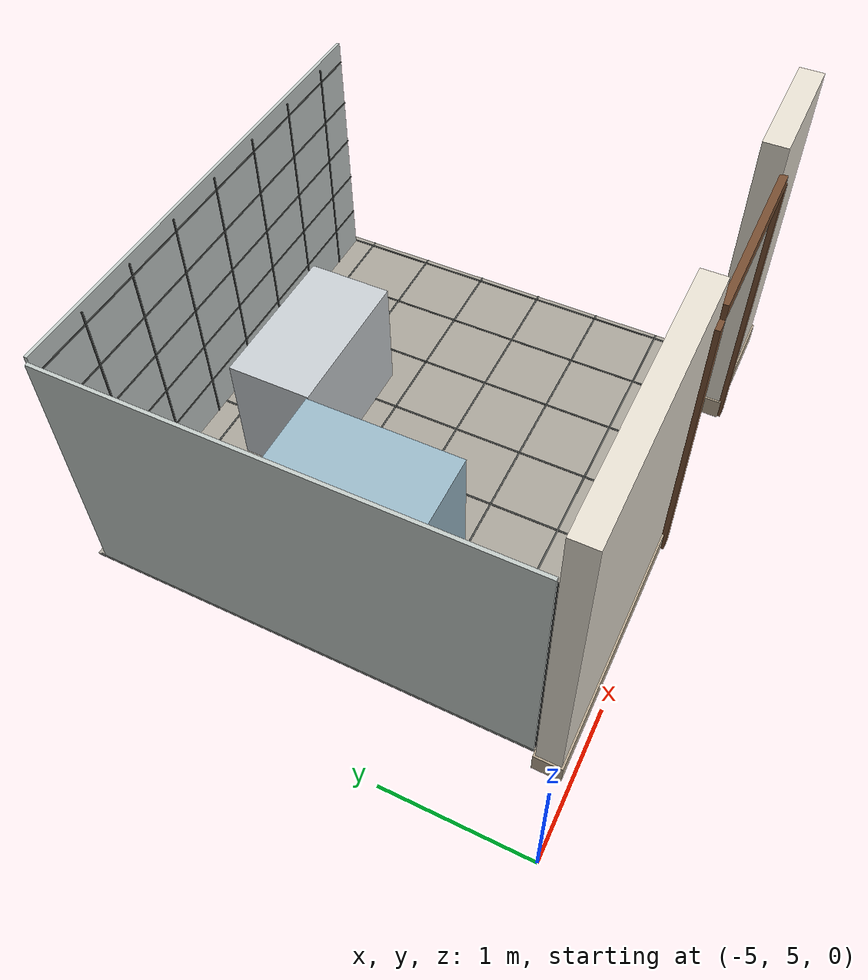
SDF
<sdf version="1.9">
 <world name="tangying_home">
  <model name="wall_bed_bath">
   <pose>-3.575 5.15 1.2 0 -0 0</pose>
   <static>true</static>
   <link name="body">
    <inertial>
     <pose>0 0 -0.0427161347433 0 -0 0</pose>
     <mass>1498.5026240000002</mass>
     <inertia>
      <ixx>765.4236744143673</ixx>
      <iyy>1190.9187768062086</iyy>
      <izz>432.14661492235854</izz>
      <ixy>0.0</ixy>
      <ixz>0.0</ixz>
      <iyz>0.0</iyz>
     </inertia>
    </inertial>
    <collision name="geom-76">
     <geometry><box><size>1.85 0.16 2.4</size></box></geometry>
     <surface><friction><ode><mu>1.0</mu><mu2>1.0</mu2></ode></friction></surface>
    </collision>
    <visual name="geom-76">
     <geometry><box><size>1.85 0.16 2.4</size></box></geometry>
     <material>
      <ambient>0.879999995232 0.819999992847 0.740000009537 1</ambient>
      <diffuse>0.879999995232 0.819999992847 0.740000009537 1</diffuse>
     </material>
    </visual>
    <visual name="geom-77">
     <geometry><box><size>1.854 0.164 2.404</size></box></geometry>
     <material>
      <ambient>0.899999976158 0.870000004768 0.819999992847 1</ambient>
      <diffuse>0.899999976158 0.870000004768 0.819999992847 1</diffuse>
     </material>
    </visual>
    <visual name="geom-78">
     <pose>0 0 -1.12 0 -0 0</pose>
     <geometry><box><size>1.88 0.19 0.16</size></box></geometry>
     <material>
      <ambient>0.72000002861 0.660000026226 0.569999992847 1</ambient>
      <diffuse>0.72000002861 0.660000026226 0.569999992847 1</diffuse>
     </material>
    </visual>
   </link>
  </model>
  <model name="wall_bed_bath_east">
   <pose>-1.025 5.15 1.2 0 -0 0</pose>
   <static>true</static>
   <link name="body">
    <inertial>
     <pose>0 0 -0.0434331907378 0 -0 0</pose>
     <mass>689.846624</mass>
     <inertia>
      <ixx>352.66944771030734</ixx>
      <iyy>392.9794643261474</iyy>
      <izz>43.37290425035744</izz>
      <ixy>0.0</ixy>
      <ixz>0.0</ixz>
      <iyz>0.0</iyz>
     </inertia>
    </inertial>
    <collision name="geom-79">
     <geometry><box><size>0.85 0.16 2.4</size></box></geometry>
     <surface><friction><ode><mu>1.0</mu><mu2>1.0</mu2></ode></friction></surface>
    </collision>
    <visual name="geom-79">
     <geometry><box><size>0.85 0.16 2.4</size></box></geometry>
     <material>
      <ambient>0.879999995232 0.819999992847 0.740000009537 1</ambient>
      <diffuse>0.879999995232 0.819999992847 0.740000009537 1</diffuse>
     </material>
    </visual>
    <visual name="geom-80">
     <geometry><box><size>0.854 0.164 2.404</size></box></geometry>
     <material>
      <ambient>0.899999976158 0.870000004768 0.819999992847 1</ambient>
      <diffuse>0.899999976158 0.870000004768 0.819999992847 1</diffuse>
     </material>
    </visual>
    <visual name="geom-81">
     <pose>0 0 -1.12 0 -0 0</pose>
     <geometry><box><size>0.88 0.19 0.16</size></box></geometry>
     <material>
      <ambient>0.72000002861 0.660000026226 0.569999992847 1</ambient>
      <diffuse>0.72000002861 0.660000026226 0.569999992847 1</diffuse>
     </material>
    </visual>
   </link>
  </model>
  <model name="bathroom">
   <pose>-2.6 6.85 0.006 0 -0 0</pose>
   <static>true</static>
   <link name="body">
    <inertial>
     <mass>67.5</mass>
     <inertia>
      <ixx>41.0068125</ixx>
      <iyy>35.1568125</iyy>
      <izz>76.16250000000001</izz>
      <ixy>0.0</ixy>
      <ixz>0.0</ixz>
      <iyz>0.0</iyz>
     </inertia>
    </inertial>
    <visual name="geom-86">
     <geometry><box><size>2.5 2.7 0.01</size></box></geometry>
     <material><ambient>0 0 0 0</ambient><diffuse>0 0 0 0</diffuse></material>
    </visual>
   </link>
  </model>
  <model name="bathroom_tiles">
   <pose>-2.65 6.825 0.012 0 -0 0</pose>
   <static>true</static>
   <link name="body">
    <inertial>
     <mass>135.93600000000004</mass>
     <inertia>
      <ixx>116.00035123200006</ixx>
      <iyy>141.95959603200006</iyy>
      <izz>257.9566848000001</izz>
      <ixy>0.0</ixy>
      <ixz>0.0</ixz>
      <iyz>0.0</iyz>
     </inertia>
    </inertial>
    <visual name="geom-91">
     <geometry><box><size>3.54 3.2 0.012</size></box></geometry>
     <material>
      <ambient>0.660000026226 0.639999985695 0.600000023842 1</ambient>
      <diffuse>0.660000026226 0.639999985695 0.600000023842 1</diffuse>
      <pbr>
       <metal>
        <albedo_map>/assets/xlerobot-home/textures/texture-7.png</albedo_map>
        <roughness>0.85</roughness>
        <metalness>0</metalness>
       </metal>
      </pbr>
     </material>
    </visual>
   </link>
  </model>
  <model name="bathroom_sink">
   <pose>-2.7 7.7 0.45 0 -0 0</pose>
   <static>true</static>
   <link name="body">
    <inertial>
     <mass>594.0000000000001</mass>
     <inertia>
      <ixx>57.91500000000001</ixx>
      <iyy>99.99000000000005</iyy>
      <izz>77.71500000000003</izz>
      <ixy>0.0</ixy>
      <ixz>0.0</ixz>
      <iyz>0.0</iyz>
     </inertia>
    </inertial>
    <collision name="geom-102">
     <geometry><box><size>1.1 0.6 0.9</size></box></geometry>
     <surface><friction><ode><mu>1.0</mu><mu2>1.0</mu2></ode></friction></surface>
    </collision>
    <visual name="geom-102">
     <geometry><box><size>1.1 0.6 0.9</size></box></geometry>
     <material>
      <ambient>0.77999997139 0.800000011921 0.819999992847 1</ambient>
      <diffuse>0.77999997139 0.800000011921 0.819999992847 1</diffuse>
     </material>
    </visual>
   </link>
  </model>
  <model name="bathroom_shower">
   <pose>-3.75 6.75 0.55 0 -0 0</pose>
   <static>true</static>
   <link name="body">
    <inertial>
     <mass>847.0000000000001</mass>
     <inertia>
      <ixx>170.81166666666672</ixx>
      <iyy>119.99166666666669</iyy>
      <izz>119.99166666666669</izz>
      <ixy>0.0</ixy>
      <ixz>0.0</ixz>
      <iyz>0.0</iyz>
     </inertia>
    </inertial>
    <collision name="geom-103">
     <geometry><box><size>0.7 1.1 1.1</size></box></geometry>
     <surface><friction><ode><mu>1.0</mu><mu2>1.0</mu2></ode></friction></surface>
    </collision>
    <visual name="geom-103">
     <geometry><box><size>0.7 1.1 1.1</size></box></geometry>
     <material>
      <ambient>0.600000023842 0.72000002861 0.77999997139 1</ambient>
      <diffuse>0.600000023842 0.72000002861 0.77999997139 1</diffuse>
     </material>
    </visual>
   </link>
  </model>
  <model name="bathroom_wall_tile_north">
   <pose>-2.65 8.405 0.95 0 -0 0</pose>
   <static>true</static>
   <link name="body">
    <inertial>
     <mass>156.86399999999998</mass>
     <inertia>
      <ixx>47.19744947199999</ixx>
      <iyy>201.87873919999993</iyy>
      <izz>154.69634867199997</izz>
      <ixy>0.0</ixy>
      <ixz>0.0</ixz>
      <iyz>0.0</iyz>
     </inertia>
    </inertial>
    <visual name="geom-147">
     <geometry><box><size>3.44 0.024 1.9</size></box></geometry>
     <material>
      <ambient>0.759999990463 0.790000021458 0.77999997139 1</ambient>
      <diffuse>0.759999990463 0.790000021458 0.77999997139 1</diffuse>
     </material>
    </visual>
   </link>
  </model>
  <model name="bathroom_wall_tile_west">
   <pose>-4.405 6.82 0.95 0 -0 0</pose>
   <static>true</static>
   <link name="body">
    <inertial>
     <mass>141.36</mass>
     <inertia>
      <ixx>155.73160000000001</ixx>
      <iyy>42.532585280000006</iyy>
      <izz>113.21258528000003</izz>
      <ixy>0.0</ixy>
      <ixz>0.0</ixz>
      <iyz>0.0</iyz>
     </inertia>
    </inertial>
    <visual name="geom-148">
     <geometry><box><size>0.024 3.1 1.9</size></box></geometry>
     <material>
      <ambient>0.759999990463 0.790000021458 0.77999997139 1</ambient>
      <diffuse>0.759999990463 0.790000021458 0.77999997139 1</diffuse>
     </material>
    </visual>
   </link>
  </model>
  <model name="bathroom_floor_grout_x_0">
   <pose>-4.42 6.815 0.02 0 -0 0</pose>
   <static>true</static>
   <link name="body">
    <inertial>
     <mass>0.15216</mass>
     <inertia>
      <ixx>0.12742025488</ixx>
      <iyy>2.0288e-06</iyy>
      <izz>0.12742187792</izz>
      <ixy>0.0</ixy>
      <ixz>0.0</ixz>
      <iyz>0.0</iyz>
     </inertia>
    </inertial>
    <visual name="geom-172">
     <geometry><box><size>0.012 3.17 0.004</size></box></geometry>
     <material>
      <ambient>0.300000011921 0.310000002384 0.300000011921 1</ambient>
      <diffuse>0.300000011921 0.310000002384 0.300000011921 1</diffuse>
     </material>
    </visual>
   </link>
  </model>
  <model name="bathroom_floor_grout_x_1">
   <pose>-3.92 6.815 0.02 0 -0 0</pose>
   <static>true</static>
   <link name="body">
    <inertial>
     <mass>0.15216</mass>
     <inertia>
      <ixx>0.12742025488</ixx>
      <iyy>2.0288e-06</iyy>
      <izz>0.12742187792</izz>
      <ixy>0.0</ixy>
      <ixz>0.0</ixz>
      <iyz>0.0</iyz>
     </inertia>
    </inertial>
    <visual name="geom-173">
     <geometry><box><size>0.012 3.17 0.004</size></box></geometry>
     <material>
      <ambient>0.300000011921 0.310000002384 0.300000011921 1</ambient>
      <diffuse>0.300000011921 0.310000002384 0.300000011921 1</diffuse>
     </material>
    </visual>
   </link>
  </model>
  <model name="bathroom_floor_grout_x_2">
   <pose>-3.42 6.815 0.02 0 -0 0</pose>
   <static>true</static>
   <link name="body">
    <inertial>
     <mass>0.15216</mass>
     <inertia>
      <ixx>0.12742025488</ixx>
      <iyy>2.0288e-06</iyy>
      <izz>0.12742187792</izz>
      <ixy>0.0</ixy>
      <ixz>0.0</ixz>
      <iyz>0.0</iyz>
     </inertia>
    </inertial>
    <visual name="geom-174">
     <geometry><box><size>0.012 3.17 0.004</size></box></geometry>
     <material>
      <ambient>0.300000011921 0.310000002384 0.300000011921 1</ambient>
      <diffuse>0.300000011921 0.310000002384 0.300000011921 1</diffuse>
     </material>
    </visual>
   </link>
  </model>
  <model name="bathroom_floor_grout_x_3">
   <pose>-2.92 6.815 0.02 0 -0 0</pose>
   <static>true</static>
   <link name="body">
    <inertial>
     <mass>0.15216</mass>
     <inertia>
      <ixx>0.12742025488</ixx>
      <iyy>2.0288e-06</iyy>
      <izz>0.12742187792</izz>
      <ixy>0.0</ixy>
      <ixz>0.0</ixz>
      <iyz>0.0</iyz>
     </inertia>
    </inertial>
    <visual name="geom-175">
     <geometry><box><size>0.012 3.17 0.004</size></box></geometry>
     <material>
      <ambient>0.300000011921 0.310000002384 0.300000011921 1</ambient>
      <diffuse>0.300000011921 0.310000002384 0.300000011921 1</diffuse>
     </material>
    </visual>
   </link>
  </model>
  <model name="bathroom_floor_grout_x_4">
   <pose>-2.42 6.815 0.02 0 -0 0</pose>
   <static>true</static>
   <link name="body">
    <inertial>
     <mass>0.15216</mass>
     <inertia>
      <ixx>0.12742025488</ixx>
      <iyy>2.0288e-06</iyy>
      <izz>0.12742187792</izz>
      <ixy>0.0</ixy>
      <ixz>0.0</ixz>
      <iyz>0.0</iyz>
     </inertia>
    </inertial>
    <visual name="geom-176">
     <geometry><box><size>0.012 3.17 0.004</size></box></geometry>
     <material>
      <ambient>0.300000011921 0.310000002384 0.300000011921 1</ambient>
      <diffuse>0.300000011921 0.310000002384 0.300000011921 1</diffuse>
     </material>
    </visual>
   </link>
  </model>
  <model name="bathroom_floor_grout_x_5">
   <pose>-1.92 6.815 0.02 0 -0 0</pose>
   <static>true</static>
   <link name="body">
    <inertial>
     <mass>0.15216</mass>
     <inertia>
      <ixx>0.12742025488</ixx>
      <iyy>2.0288e-06</iyy>
      <izz>0.12742187792</izz>
      <ixy>0.0</ixy>
      <ixz>0.0</ixz>
      <iyz>0.0</iyz>
     </inertia>
    </inertial>
    <visual name="geom-177">
     <geometry><box><size>0.012 3.17 0.004</size></box></geometry>
     <material>
      <ambient>0.300000011921 0.310000002384 0.300000011921 1</ambient>
      <diffuse>0.300000011921 0.310000002384 0.300000011921 1</diffuse>
     </material>
    </visual>
   </link>
  </model>
  <model name="bathroom_floor_grout_x_6">
   <pose>-1.42 6.815 0.02 0 -0 0</pose>
   <static>true</static>
   <link name="body">
    <inertial>
     <mass>0.15216</mass>
     <inertia>
      <ixx>0.12742025488</ixx>
      <iyy>2.0288e-06</iyy>
      <izz>0.12742187792</izz>
      <ixy>0.0</ixy>
      <ixz>0.0</ixz>
      <iyz>0.0</iyz>
     </inertia>
    </inertial>
    <visual name="geom-178">
     <geometry><box><size>0.012 3.17 0.004</size></box></geometry>
     <material>
      <ambient>0.300000011921 0.310000002384 0.300000011921 1</ambient>
      <diffuse>0.300000011921 0.310000002384 0.300000011921 1</diffuse>
     </material>
    </visual>
   </link>
  </model>
  <model name="bathroom_floor_grout_x_7">
   <pose>-0.92 6.815 0.02 0 -0 0</pose>
   <static>true</static>
   <link name="body">
    <inertial>
     <mass>0.15216</mass>
     <inertia>
      <ixx>0.12742025488</ixx>
      <iyy>2.0288e-06</iyy>
      <izz>0.12742187792</izz>
      <ixy>0.0</ixy>
      <ixz>0.0</ixz>
      <iyz>0.0</iyz>
     </inertia>
    </inertial>
    <visual name="geom-179">
     <geometry><box><size>0.012 3.17 0.004</size></box></geometry>
     <material>
      <ambient>0.300000011921 0.310000002384 0.300000011921 1</ambient>
      <diffuse>0.300000011921 0.310000002384 0.300000011921 1</diffuse>
     </material>
    </visual>
   </link>
  </model>
  <model name="bathroom_floor_grout_y_0">
   <pose>-2.65 5.23 0.02 0 -0 0</pose>
   <static>true</static>
   <link name="body">
    <inertial>
     <mass>0.16992000000000002</mass>
     <inertia>
      <ixx>2.2656000000000004e-06</ixx>
      <iyy>0.17744768256000001</iyy>
      <izz>0.17744949504000004</izz>
      <ixy>0.0</ixy>
      <ixz>0.0</ixz>
      <iyz>0.0</iyz>
     </inertia>
    </inertial>
    <visual name="geom-180">
     <geometry><box><size>3.54 0.012 0.004</size></box></geometry>
     <material>
      <ambient>0.300000011921 0.310000002384 0.300000011921 1</ambient>
      <diffuse>0.300000011921 0.310000002384 0.300000011921 1</diffuse>
     </material>
    </visual>
   </link>
  </model>
  <model name="bathroom_floor_grout_y_1">
   <pose>-2.65 5.73 0.02 0 -0 0</pose>
   <static>true</static>
   <link name="body">
    <inertial>
     <mass>0.16992000000000002</mass>
     <inertia>
      <ixx>2.2656000000000004e-06</ixx>
      <iyy>0.17744768256000001</iyy>
      <izz>0.17744949504000004</izz>
      <ixy>0.0</ixy>
      <ixz>0.0</ixz>
      <iyz>0.0</iyz>
     </inertia>
    </inertial>
    <visual name="geom-181">
     <geometry><box><size>3.54 0.012 0.004</size></box></geometry>
     <material>
      <ambient>0.300000011921 0.310000002384 0.300000011921 1</ambient>
      <diffuse>0.300000011921 0.310000002384 0.300000011921 1</diffuse>
     </material>
    </visual>
   </link>
  </model>
  <model name="bathroom_floor_grout_y_2">
   <pose>-2.65 6.23 0.02 0 -0 0</pose>
   <static>true</static>
   <link name="body">
    <inertial>
     <mass>0.16992000000000002</mass>
     <inertia>
      <ixx>2.2656000000000004e-06</ixx>
      <iyy>0.17744768256000001</iyy>
      <izz>0.17744949504000004</izz>
      <ixy>0.0</ixy>
      <ixz>0.0</ixz>
      <iyz>0.0</iyz>
     </inertia>
    </inertial>
    <visual name="geom-182">
     <geometry><box><size>3.54 0.012 0.004</size></box></geometry>
     <material>
      <ambient>0.300000011921 0.310000002384 0.300000011921 1</ambient>
      <diffuse>0.300000011921 0.310000002384 0.300000011921 1</diffuse>
     </material>
    </visual>
   </link>
  </model>
  <model name="bathroom_floor_grout_y_3">
   <pose>-2.65 6.73 0.02 0 -0 0</pose>
   <static>true</static>
   <link name="body">
    <inertial>
     <mass>0.16992000000000002</mass>
     <inertia>
      <ixx>2.2656000000000004e-06</ixx>
      <iyy>0.17744768256000001</iyy>
      <izz>0.17744949504000004</izz>
      <ixy>0.0</ixy>
      <ixz>0.0</ixz>
      <iyz>0.0</iyz>
     </inertia>
    </inertial>
    <visual name="geom-183">
     <geometry><box><size>3.54 0.012 0.004</size></box></geometry>
     <material>
      <ambient>0.300000011921 0.310000002384 0.300000011921 1</ambient>
      <diffuse>0.300000011921 0.310000002384 0.300000011921 1</diffuse>
     </material>
    </visual>
   </link>
  </model>
  <model name="bathroom_floor_grout_y_4">
   <pose>-2.65 7.23 0.02 0 -0 0</pose>
   <static>true</static>
   <link name="body">
    <inertial>
     <mass>0.16992000000000002</mass>
     <inertia>
      <ixx>2.2656000000000004e-06</ixx>
      <iyy>0.17744768256000001</iyy>
      <izz>0.17744949504000004</izz>
      <ixy>0.0</ixy>
      <ixz>0.0</ixz>
      <iyz>0.0</iyz>
     </inertia>
    </inertial>
    <visual name="geom-184">
     <geometry><box><size>3.54 0.012 0.004</size></box></geometry>
     <material>
      <ambient>0.300000011921 0.310000002384 0.300000011921 1</ambient>
      <diffuse>0.300000011921 0.310000002384 0.300000011921 1</diffuse>
     </material>
    </visual>
   </link>
  </model>
  <model name="bathroom_floor_grout_y_5">
   <pose>-2.65 7.73 0.02 0 -0 0</pose>
   <static>true</static>
   <link name="body">
    <inertial>
     <mass>0.16992000000000002</mass>
     <inertia>
      <ixx>2.2656000000000004e-06</ixx>
      <iyy>0.17744768256000001</iyy>
      <izz>0.17744949504000004</izz>
      <ixy>0.0</ixy>
      <ixz>0.0</ixz>
      <iyz>0.0</iyz>
     </inertia>
    </inertial>
    <visual name="geom-185">
     <geometry><box><size>3.54 0.012 0.004</size></box></geometry>
     <material>
      <ambient>0.300000011921 0.310000002384 0.300000011921 1</ambient>
      <diffuse>0.300000011921 0.310000002384 0.300000011921 1</diffuse>
     </material>
    </visual>
   </link>
  </model>
  <model name="bathroom_floor_grout_y_6">
   <pose>-2.65 8.23 0.02 0 -0 0</pose>
   <static>true</static>
   <link name="body">
    <inertial>
     <mass>0.16992000000000002</mass>
     <inertia>
      <ixx>2.2656000000000004e-06</ixx>
      <iyy>0.17744768256000001</iyy>
      <izz>0.17744949504000004</izz>
      <ixy>0.0</ixy>
      <ixz>0.0</ixz>
      <iyz>0.0</iyz>
     </inertia>
    </inertial>
    <visual name="geom-186">
     <geometry><box><size>3.54 0.012 0.004</size></box></geometry>
     <material>
      <ambient>0.300000011921 0.310000002384 0.300000011921 1</ambient>
      <diffuse>0.300000011921 0.310000002384 0.300000011921 1</diffuse>
     </material>
    </visual>
   </link>
  </model>
  <model name="bathroom_north_grout_v_0">
   <pose>-4.37 8.391 0.925 0 -0 0</pose>
   <static>true</static>
   <link name="body">
    <inertial>
     <mass>0.1776</mass>
     <inertia>
      <ixx>0.050653947200000014</ixx>
      <iyy>0.05065513120000001</iyy>
      <izz>3.0784000000000005e-06</izz>
      <ixy>0.0</ixy>
      <ixz>0.0</ixz>
      <iyz>0.0</iyz>
     </inertia>
    </inertial>
    <visual name="geom-216">
     <geometry><box><size>0.012 0.008 1.85</size></box></geometry>
     <material>
      <ambient>0.300000011921 0.310000002384 0.300000011921 1</ambient>
      <diffuse>0.300000011921 0.310000002384 0.300000011921 1</diffuse>
     </material>
    </visual>
   </link>
  </model>
  <model name="bathroom_north_grout_v_1">
   <pose>-3.92 8.391 0.925 0 -0 0</pose>
   <static>true</static>
   <link name="body">
    <inertial>
     <mass>0.1776</mass>
     <inertia>
      <ixx>0.050653947200000014</ixx>
      <iyy>0.05065513120000001</iyy>
      <izz>3.0784000000000005e-06</izz>
      <ixy>0.0</ixy>
      <ixz>0.0</ixz>
      <iyz>0.0</iyz>
     </inertia>
    </inertial>
    <visual name="geom-217">
     <geometry><box><size>0.012 0.008 1.85</size></box></geometry>
     <material>
      <ambient>0.300000011921 0.310000002384 0.300000011921 1</ambient>
      <diffuse>0.300000011921 0.310000002384 0.300000011921 1</diffuse>
     </material>
    </visual>
   </link>
  </model>
  <model name="bathroom_north_grout_v_2">
   <pose>-3.47 8.391 0.925 0 -0 0</pose>
   <static>true</static>
   <link name="body">
    <inertial>
     <mass>0.1776</mass>
     <inertia>
      <ixx>0.050653947200000014</ixx>
      <iyy>0.05065513120000001</iyy>
      <izz>3.0784000000000005e-06</izz>
      <ixy>0.0</ixy>
      <ixz>0.0</ixz>
      <iyz>0.0</iyz>
     </inertia>
    </inertial>
    <visual name="geom-218">
     <geometry><box><size>0.012 0.008 1.85</size></box></geometry>
     <material>
      <ambient>0.300000011921 0.310000002384 0.300000011921 1</ambient>
      <diffuse>0.300000011921 0.310000002384 0.300000011921 1</diffuse>
     </material>
    </visual>
   </link>
  </model>
  <model name="bathroom_north_grout_v_3">
   <pose>-3.02 8.391 0.925 0 -0 0</pose>
   <static>true</static>
   <link name="body">
    <inertial>
     <mass>0.1776</mass>
     <inertia>
      <ixx>0.050653947200000014</ixx>
      <iyy>0.05065513120000001</iyy>
      <izz>3.0784000000000005e-06</izz>
      <ixy>0.0</ixy>
      <ixz>0.0</ixz>
      <iyz>0.0</iyz>
     </inertia>
    </inertial>
    <visual name="geom-219">
     <geometry><box><size>0.012 0.008 1.85</size></box></geometry>
     <material>
      <ambient>0.300000011921 0.310000002384 0.300000011921 1</ambient>
      <diffuse>0.300000011921 0.310000002384 0.300000011921 1</diffuse>
     </material>
    </visual>
   </link>
  </model>
  <model name="bathroom_north_grout_v_4">
   <pose>-2.57 8.391 0.925 0 -0 0</pose>
   <static>true</static>
   <link name="body">
    <inertial>
     <mass>0.1776</mass>
     <inertia>
      <ixx>0.050653947200000014</ixx>
      <iyy>0.05065513120000001</iyy>
      <izz>3.0784000000000005e-06</izz>
      <ixy>0.0</ixy>
      <ixz>0.0</ixz>
      <iyz>0.0</iyz>
     </inertia>
    </inertial>
    <visual name="geom-220">
     <geometry><box><size>0.012 0.008 1.85</size></box></geometry>
     <material>
      <ambient>0.300000011921 0.310000002384 0.300000011921 1</ambient>
      <diffuse>0.300000011921 0.310000002384 0.300000011921 1</diffuse>
     </material>
    </visual>
   </link>
  </model>
  <model name="bathroom_north_grout_v_5">
   <pose>-2.12 8.391 0.925 0 -0 0</pose>
   <static>true</static>
   <link name="body">
    <inertial>
     <mass>0.1776</mass>
     <inertia>
      <ixx>0.050653947200000014</ixx>
      <iyy>0.05065513120000001</iyy>
      <izz>3.0784000000000005e-06</izz>
      <ixy>0.0</ixy>
      <ixz>0.0</ixz>
      <iyz>0.0</iyz>
     </inertia>
    </inertial>
    <visual name="geom-221">
     <geometry><box><size>0.012 0.008 1.85</size></box></geometry>
     <material>
      <ambient>0.300000011921 0.310000002384 0.300000011921 1</ambient>
      <diffuse>0.300000011921 0.310000002384 0.300000011921 1</diffuse>
     </material>
    </visual>
   </link>
  </model>
  <model name="bathroom_north_grout_v_6">
   <pose>-1.67 8.391 0.925 0 -0 0</pose>
   <static>true</static>
   <link name="body">
    <inertial>
     <mass>0.1776</mass>
     <inertia>
      <ixx>0.050653947200000014</ixx>
      <iyy>0.05065513120000001</iyy>
      <izz>3.0784000000000005e-06</izz>
      <ixy>0.0</ixy>
      <ixz>0.0</ixz>
      <iyz>0.0</iyz>
     </inertia>
    </inertial>
    <visual name="geom-222">
     <geometry><box><size>0.012 0.008 1.85</size></box></geometry>
     <material>
      <ambient>0.300000011921 0.310000002384 0.300000011921 1</ambient>
      <diffuse>0.300000011921 0.310000002384 0.300000011921 1</diffuse>
     </material>
    </visual>
   </link>
  </model>
  <model name="bathroom_north_grout_v_7">
   <pose>-1.22 8.391 0.925 0 -0 0</pose>
   <static>true</static>
   <link name="body">
    <inertial>
     <mass>0.1776</mass>
     <inertia>
      <ixx>0.050653947200000014</ixx>
      <iyy>0.05065513120000001</iyy>
      <izz>3.0784000000000005e-06</izz>
      <ixy>0.0</ixy>
      <ixz>0.0</ixz>
      <iyz>0.0</iyz>
     </inertia>
    </inertial>
    <visual name="geom-223">
     <geometry><box><size>0.012 0.008 1.85</size></box></geometry>
     <material>
      <ambient>0.300000011921 0.310000002384 0.300000011921 1</ambient>
      <diffuse>0.300000011921 0.310000002384 0.300000011921 1</diffuse>
     </material>
    </visual>
   </link>
  </model>
  <model name="bathroom_north_grout_h_0">
   <pose>-2.65 8.391 0.35 0 -0 0</pose>
   <static>true</static>
   <link name="body">
    <inertial>
     <mass>0.33024</mass>
     <inertia>
      <ixx>5.72416e-06</ixx>
      <iyy>0.32566463487999997</iyy>
      <izz>0.32566243327999994</izz>
      <ixy>0.0</ixy>
      <ixz>0.0</ixz>
      <iyz>0.0</iyz>
     </inertia>
    </inertial>
    <visual name="geom-224">
     <geometry><box><size>3.44 0.008 0.012</size></box></geometry>
     <material>
      <ambient>0.300000011921 0.310000002384 0.300000011921 1</ambient>
      <diffuse>0.300000011921 0.310000002384 0.300000011921 1</diffuse>
     </material>
    </visual>
   </link>
  </model>
  <model name="bathroom_north_grout_h_1">
   <pose>-2.65 8.391 0.7 0 -0 0</pose>
   <static>true</static>
   <link name="body">
    <inertial>
     <mass>0.33024</mass>
     <inertia>
      <ixx>5.72416e-06</ixx>
      <iyy>0.32566463487999997</iyy>
      <izz>0.32566243327999994</izz>
      <ixy>0.0</ixy>
      <ixz>0.0</ixz>
      <iyz>0.0</iyz>
     </inertia>
    </inertial>
    <visual name="geom-225">
     <geometry><box><size>3.44 0.008 0.012</size></box></geometry>
     <material>
      <ambient>0.300000011921 0.310000002384 0.300000011921 1</ambient>
      <diffuse>0.300000011921 0.310000002384 0.300000011921 1</diffuse>
     </material>
    </visual>
   </link>
  </model>
  <model name="bathroom_north_grout_h_2">
   <pose>-2.65 8.391 1.05 0 -0 0</pose>
   <static>true</static>
   <link name="body">
    <inertial>
     <mass>0.33024</mass>
     <inertia>
      <ixx>5.72416e-06</ixx>
      <iyy>0.32566463487999997</iyy>
      <izz>0.32566243327999994</izz>
      <ixy>0.0</ixy>
      <ixz>0.0</ixz>
      <iyz>0.0</iyz>
     </inertia>
    </inertial>
    <visual name="geom-226">
     <geometry><box><size>3.44 0.008 0.012</size></box></geometry>
     <material>
      <ambient>0.300000011921 0.310000002384 0.300000011921 1</ambient>
      <diffuse>0.300000011921 0.310000002384 0.300000011921 1</diffuse>
     </material>
    </visual>
   </link>
  </model>
  <model name="bathroom_north_grout_h_3">
   <pose>-2.65 8.391 1.4 0 -0 0</pose>
   <static>true</static>
   <link name="body">
    <inertial>
     <mass>0.33024</mass>
     <inertia>
      <ixx>5.72416e-06</ixx>
      <iyy>0.32566463487999997</iyy>
      <izz>0.32566243327999994</izz>
      <ixy>0.0</ixy>
      <ixz>0.0</ixz>
      <iyz>0.0</iyz>
     </inertia>
    </inertial>
    <visual name="geom-227">
     <geometry><box><size>3.44 0.008 0.012</size></box></geometry>
     <material>
      <ambient>0.300000011921 0.310000002384 0.300000011921 1</ambient>
      <diffuse>0.300000011921 0.310000002384 0.300000011921 1</diffuse>
     </material>
    </visual>
   </link>
  </model>
  <model name="bathroom_north_grout_h_4">
   <pose>-2.65 8.391 1.75 0 -0 0</pose>
   <static>true</static>
   <link name="body">
    <inertial>
     <mass>0.33024</mass>
     <inertia>
      <ixx>5.72416e-06</ixx>
      <iyy>0.32566463487999997</iyy>
      <izz>0.32566243327999994</izz>
      <ixy>0.0</ixy>
      <ixz>0.0</ixz>
      <iyz>0.0</iyz>
     </inertia>
    </inertial>
    <visual name="geom-228">
     <geometry><box><size>3.44 0.008 0.012</size></box></geometry>
     <material>
      <ambient>0.300000011921 0.310000002384 0.300000011921 1</ambient>
      <diffuse>0.300000011921 0.310000002384 0.300000011921 1</diffuse>
     </material>
    </visual>
   </link>
  </model>
  <model name="bathroom_west_grout_v_0">
   <pose>-4.391 5.27 0.925 0 -0 0</pose>
   <static>true</static>
   <link name="body">
    <inertial>
     <mass>0.1776</mass>
     <inertia>
      <ixx>0.05065513120000001</ixx>
      <iyy>0.050653947200000014</iyy>
      <izz>3.0784000000000005e-06</izz>
      <ixy>0.0</ixy>
      <ixz>0.0</ixz>
      <iyz>0.0</iyz>
     </inertia>
    </inertial>
    <visual name="geom-229">
     <geometry><box><size>0.008 0.012 1.85</size></box></geometry>
     <material>
      <ambient>0.300000011921 0.310000002384 0.300000011921 1</ambient>
      <diffuse>0.300000011921 0.310000002384 0.300000011921 1</diffuse>
     </material>
    </visual>
   </link>
  </model>
  <model name="bathroom_west_grout_v_1">
   <pose>-4.391 5.72 0.925 0 -0 0</pose>
   <static>true</static>
   <link name="body">
    <inertial>
     <mass>0.1776</mass>
     <inertia>
      <ixx>0.05065513120000001</ixx>
      <iyy>0.050653947200000014</iyy>
      <izz>3.0784000000000005e-06</izz>
      <ixy>0.0</ixy>
      <ixz>0.0</ixz>
      <iyz>0.0</iyz>
     </inertia>
    </inertial>
    <visual name="geom-230">
     <geometry><box><size>0.008 0.012 1.85</size></box></geometry>
     <material>
      <ambient>0.300000011921 0.310000002384 0.300000011921 1</ambient>
      <diffuse>0.300000011921 0.310000002384 0.300000011921 1</diffuse>
     </material>
    </visual>
   </link>
  </model>
  <model name="bathroom_west_grout_v_2">
   <pose>-4.391 6.17 0.925 0 -0 0</pose>
   <static>true</static>
   <link name="body">
    <inertial>
     <mass>0.1776</mass>
     <inertia>
      <ixx>0.05065513120000001</ixx>
      <iyy>0.050653947200000014</iyy>
      <izz>3.0784000000000005e-06</izz>
      <ixy>0.0</ixy>
      <ixz>0.0</ixz>
      <iyz>0.0</iyz>
     </inertia>
    </inertial>
    <visual name="geom-231">
     <geometry><box><size>0.008 0.012 1.85</size></box></geometry>
     <material>
      <ambient>0.300000011921 0.310000002384 0.300000011921 1</ambient>
      <diffuse>0.300000011921 0.310000002384 0.300000011921 1</diffuse>
     </material>
    </visual>
   </link>
  </model>
  <model name="bathroom_west_grout_v_3">
   <pose>-4.391 6.62 0.925 0 -0 0</pose>
   <static>true</static>
   <link name="body">
    <inertial>
     <mass>0.1776</mass>
     <inertia>
      <ixx>0.05065513120000001</ixx>
      <iyy>0.050653947200000014</iyy>
      <izz>3.0784000000000005e-06</izz>
      <ixy>0.0</ixy>
      <ixz>0.0</ixz>
      <iyz>0.0</iyz>
     </inertia>
    </inertial>
    <visual name="geom-232">
     <geometry><box><size>0.008 0.012 1.85</size></box></geometry>
     <material>
      <ambient>0.300000011921 0.310000002384 0.300000011921 1</ambient>
      <diffuse>0.300000011921 0.310000002384 0.300000011921 1</diffuse>
     </material>
    </visual>
   </link>
  </model>
  <model name="bathroom_west_grout_v_4">
   <pose>-4.391 7.07 0.925 0 -0 0</pose>
   <static>true</static>
   <link name="body">
    <inertial>
     <mass>0.1776</mass>
     <inertia>
      <ixx>0.05065513120000001</ixx>
      <iyy>0.050653947200000014</iyy>
      <izz>3.0784000000000005e-06</izz>
      <ixy>0.0</ixy>
      <ixz>0.0</ixz>
      <iyz>0.0</iyz>
     </inertia>
    </inertial>
    <visual name="geom-233">
     <geometry><box><size>0.008 0.012 1.85</size></box></geometry>
     <material>
      <ambient>0.300000011921 0.310000002384 0.300000011921 1</ambient>
      <diffuse>0.300000011921 0.310000002384 0.300000011921 1</diffuse>
     </material>
    </visual>
   </link>
  </model>
  <model name="bathroom_west_grout_v_5">
   <pose>-4.391 7.52 0.925 0 -0 0</pose>
   <static>true</static>
   <link name="body">
    <inertial>
     <mass>0.1776</mass>
     <inertia>
      <ixx>0.05065513120000001</ixx>
      <iyy>0.050653947200000014</iyy>
      <izz>3.0784000000000005e-06</izz>
      <ixy>0.0</ixy>
      <ixz>0.0</ixz>
      <iyz>0.0</iyz>
     </inertia>
    </inertial>
    <visual name="geom-234">
     <geometry><box><size>0.008 0.012 1.85</size></box></geometry>
     <material>
      <ambient>0.300000011921 0.310000002384 0.300000011921 1</ambient>
      <diffuse>0.300000011921 0.310000002384 0.300000011921 1</diffuse>
     </material>
    </visual>
   </link>
  </model>
  <model name="bathroom_west_grout_v_6">
   <pose>-4.391 7.97 0.925 0 -0 0</pose>
   <static>true</static>
   <link name="body">
    <inertial>
     <mass>0.1776</mass>
     <inertia>
      <ixx>0.05065513120000001</ixx>
      <iyy>0.050653947200000014</iyy>
      <izz>3.0784000000000005e-06</izz>
      <ixy>0.0</ixy>
      <ixz>0.0</ixz>
      <iyz>0.0</iyz>
     </inertia>
    </inertial>
    <visual name="geom-235">
     <geometry><box><size>0.008 0.012 1.85</size></box></geometry>
     <material>
      <ambient>0.300000011921 0.310000002384 0.300000011921 1</ambient>
      <diffuse>0.300000011921 0.310000002384 0.300000011921 1</diffuse>
     </material>
    </visual>
   </link>
  </model>
  <model name="bathroom_west_grout_h_0">
   <pose>-4.391 6.82 0.35 0 -0 0</pose>
   <static>true</static>
   <link name="body">
    <inertial>
     <mass>0.2976</mass>
     <inertia>
      <ixx>0.23833157119999993</ixx>
      <iyy>5.1584000000000005e-06</iyy>
      <izz>0.23832958719999994</izz>
      <ixy>0.0</ixy>
      <ixz>0.0</ixz>
      <iyz>0.0</iyz>
     </inertia>
    </inertial>
    <visual name="geom-236">
     <geometry><box><size>0.008 3.1 0.012</size></box></geometry>
     <material>
      <ambient>0.300000011921 0.310000002384 0.300000011921 1</ambient>
      <diffuse>0.300000011921 0.310000002384 0.300000011921 1</diffuse>
     </material>
    </visual>
   </link>
  </model>
  <model name="bathroom_west_grout_h_1">
   <pose>-4.391 6.82 0.7 0 -0 0</pose>
   <static>true</static>
   <link name="body">
    <inertial>
     <mass>0.2976</mass>
     <inertia>
      <ixx>0.23833157119999993</ixx>
      <iyy>5.1584000000000005e-06</iyy>
      <izz>0.23832958719999994</izz>
      <ixy>0.0</ixy>
      <ixz>0.0</ixz>
      <iyz>0.0</iyz>
     </inertia>
    </inertial>
    <visual name="geom-237">
     <geometry><box><size>0.008 3.1 0.012</size></box></geometry>
     <material>
      <ambient>0.300000011921 0.310000002384 0.300000011921 1</ambient>
      <diffuse>0.300000011921 0.310000002384 0.300000011921 1</diffuse>
     </material>
    </visual>
   </link>
  </model>
  <model name="bathroom_west_grout_h_2">
   <pose>-4.391 6.82 1.05 0 -0 0</pose>
   <static>true</static>
   <link name="body">
    <inertial>
     <mass>0.2976</mass>
     <inertia>
      <ixx>0.23833157119999993</ixx>
      <iyy>5.1584000000000005e-06</iyy>
      <izz>0.23832958719999994</izz>
      <ixy>0.0</ixy>
      <ixz>0.0</ixz>
      <iyz>0.0</iyz>
     </inertia>
    </inertial>
    <visual name="geom-238">
     <geometry><box><size>0.008 3.1 0.012</size></box></geometry>
     <material>
      <ambient>0.300000011921 0.310000002384 0.300000011921 1</ambient>
      <diffuse>0.300000011921 0.310000002384 0.300000011921 1</diffuse>
     </material>
    </visual>
   </link>
  </model>
  <model name="bathroom_west_grout_h_3">
   <pose>-4.391 6.82 1.4 0 -0 0</pose>
   <static>true</static>
   <link name="body">
    <inertial>
     <mass>0.2976</mass>
     <inertia>
      <ixx>0.23833157119999993</ixx>
      <iyy>5.1584000000000005e-06</iyy>
      <izz>0.23832958719999994</izz>
      <ixy>0.0</ixy>
      <ixz>0.0</ixz>
      <iyz>0.0</iyz>
     </inertia>
    </inertial>
    <visual name="geom-239">
     <geometry><box><size>0.008 3.1 0.012</size></box></geometry>
     <material>
      <ambient>0.300000011921 0.310000002384 0.300000011921 1</ambient>
      <diffuse>0.300000011921 0.310000002384 0.300000011921 1</diffuse>
     </material>
    </visual>
   </link>
  </model>
  <model name="bathroom_west_grout_h_4">
   <pose>-4.391 6.82 1.75 0 -0 0</pose>
   <static>true</static>
   <link name="body">
    <inertial>
     <mass>0.2976</mass>
     <inertia>
      <ixx>0.23833157119999993</ixx>
      <iyy>5.1584000000000005e-06</iyy>
      <izz>0.23832958719999994</izz>
      <ixy>0.0</ixy>
      <ixz>0.0</ixz>
      <iyz>0.0</iyz>
     </inertia>
    </inertial>
    <visual name="geom-240">
     <geometry><box><size>0.008 3.1 0.012</size></box></geometry>
     <material>
      <ambient>0.300000011921 0.310000002384 0.300000011921 1</ambient>
      <diffuse>0.300000011921 0.310000002384 0.300000011921 1</diffuse>
     </material>
    </visual>
   </link>
  </model>
  <model name="bed_bath_trim_left">
   <pose>-2.695 5.06 1.05 0 -0 0</pose>
   <static>true</static>
   <link name="body">
    <inertial>
     <mass>9.45</mass>
     <inertia>
      <ixx>3.4748437500000002</ixx>
      <iyy>3.47925375</iyy>
      <izz>0.008347499999999999</izz>
      <ixy>0.0</ixy>
      <ixz>0.0</ixz>
      <iyz>0.0</iyz>
     </inertia>
    </inertial>
    <visual name="geom-244">
     <geometry><box><size>0.09 0.05 2.1</size></box></geometry>
     <material>
      <ambient>0.460000008345 0.300000011921 0.189999997616 1</ambient>
      <diffuse>0.460000008345 0.300000011921 0.189999997616 1</diffuse>
     </material>
    </visual>
   </link>
  </model>
  <model name="bed_bath_trim_right">
   <pose>-1.405 5.06 1.05 0 -0 0</pose>
   <static>true</static>
   <link name="body">
    <inertial>
     <mass>9.45</mass>
     <inertia>
      <ixx>3.4748437500000002</ixx>
      <iyy>3.47925375</iyy>
      <izz>0.008347499999999999</izz>
      <ixy>0.0</ixy>
      <ixz>0.0</ixz>
      <iyz>0.0</iyz>
     </inertia>
    </inertial>
    <visual name="geom-245">
     <geometry><box><size>0.09 0.05 2.1</size></box></geometry>
     <material>
      <ambient>0.460000008345 0.300000011921 0.189999997616 1</ambient>
      <diffuse>0.460000008345 0.300000011921 0.189999997616 1</diffuse>
     </material>
    </visual>
   </link>
  </model>
  <model name="bed_bath_trim_top">
   <pose>-2.05 5.06 2.16 0 -0 0</pose>
   <static>true</static>
   <link name="body">
    <inertial>
     <mass>6.654999999999999</mass>
     <inertia>
      <ixx>0.008096916666666665</ixx>
      <iyy>0.8186759166666665</iyy>
      <izz>0.8133519166666665</izz>
      <ixy>0.0</ixy>
      <ixz>0.0</ixz>
      <iyz>0.0</iyz>
     </inertia>
    </inertial>
    <visual name="geom-246">
     <geometry><box><size>1.21 0.05 0.11</size></box></geometry>
     <material>
      <ambient>0.460000008345 0.300000011921 0.189999997616 1</ambient>
      <diffuse>0.460000008345 0.300000011921 0.189999997616 1</diffuse>
     </material>
    </visual>
   </link>
  </model>
 </world>
</sdf>
